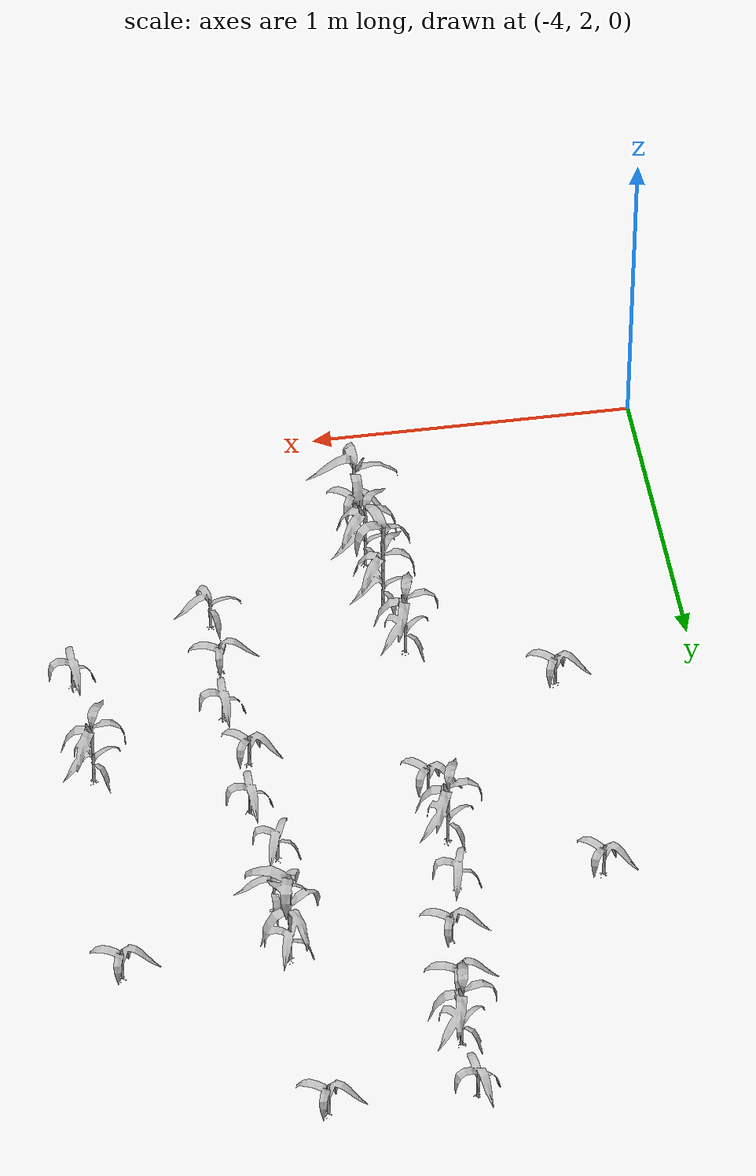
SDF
<sdf version="1.7">
 <world name="default">
  <model name="maize_-3.560724053893078_3.1950000000000003">
   <static>1</static>
   <link name="link">
    <inertial>
     <mass>0.2</mass>
     <inertia>
      <ixx>0.166667</ixx>
      <ixy>0</ixy>
      <ixz>0</ixz>
      <iyy>0.166667</iyy>
      <iyz>0</iyz>
      <izz>0.166667</izz>
     </inertia>
    </inertial>
    <collision name="collision">
     <geometry><mesh><uri>model://corn_3/meshes/corn.dae</uri><scale>0.25 0.25 0.25</scale></mesh></geometry>
     <surface>
      <friction><ode><mu>0</mu><mu2>0</mu2></ode></friction>
      <contact><ode><kp>0</kp><kd>0</kd><max_vel>0</max_vel><min_depth>0.002</min_depth></ode></contact>
     </surface>
    </collision>
    <visual name="visual">
     <geometry><mesh><uri>model://corn_3/meshes/corn.dae</uri><scale>0.25 0.25 0.25</scale></mesh></geometry>
    </visual>
    <velocity_decay><linear>0</linear><angular>0</angular></velocity_decay>
   </link>
   <pose>-3.56072 3.195 0.05 0 -0 2.61687</pose>
  </model>
  <model name="maize_-3.569120980531867_3.9750000000000005">
   <static>1</static>
   <link name="link">
    <inertial>
     <mass>0.2</mass>
     <inertia>
      <ixx>0.166667</ixx>
      <ixy>0</ixy>
      <ixz>0</ixz>
      <iyy>0.166667</iyy>
      <iyz>0</iyz>
      <izz>0.166667</izz>
     </inertia>
    </inertial>
    <collision name="collision">
     <geometry><mesh><uri>model://corn_3/meshes/corn.dae</uri><scale>0.25 0.25 0.25</scale></mesh></geometry>
     <surface>
      <friction><ode><mu>0</mu><mu2>0</mu2></ode></friction>
      <contact><ode><kp>0</kp><kd>0</kd><max_vel>0</max_vel><min_depth>0.002</min_depth></ode></contact>
     </surface>
    </collision>
    <visual name="visual">
     <geometry><mesh><uri>model://corn_3/meshes/corn.dae</uri><scale>0.25 0.25 0.25</scale></mesh></geometry>
    </visual>
    <velocity_decay><linear>0</linear><angular>0</angular></velocity_decay>
   </link>
   <pose>-3.56912 3.975 0.05 0 -0 2.43668</pose>
  </model>
  <model name="maize_-3.0683423191602865_2.415">
   <static>1</static>
   <link name="link">
    <inertial>
     <mass>0.2</mass>
     <inertia>
      <ixx>0.166667</ixx>
      <ixy>0</ixy>
      <ixz>0</ixz>
      <iyy>0.166667</iyy>
      <iyz>0</iyz>
      <izz>0.166667</izz>
     </inertia>
    </inertial>
    <collision name="collision">
     <geometry><mesh><uri>model://corn_4/meshes/corn.dae</uri><scale>0.25 0.25 0.25</scale></mesh></geometry>
     <surface>
      <friction><ode><mu>0</mu><mu2>0</mu2></ode></friction>
      <contact><ode><kp>0</kp><kd>0</kd><max_vel>0</max_vel><min_depth>0.002</min_depth></ode></contact>
     </surface>
    </collision>
    <visual name="visual">
     <geometry><mesh><uri>model://corn_4/meshes/corn.dae</uri><scale>0.25 0.25 0.25</scale></mesh></geometry>
    </visual>
    <velocity_decay><linear>0</linear><angular>0</angular></velocity_decay>
   </link>
   <pose>-3.06834 2.415 0.05 0 -0 2.5749</pose>
  </model>
  <model name="maize_-3.0740597269625063_2.6100000000000003">
   <static>1</static>
   <link name="link">
    <inertial>
     <mass>0.2</mass>
     <inertia>
      <ixx>0.166667</ixx>
      <ixy>0</ixy>
      <ixz>0</ixz>
      <iyy>0.166667</iyy>
      <iyz>0</iyz>
      <izz>0.166667</izz>
     </inertia>
    </inertial>
    <collision name="collision">
     <geometry><mesh><uri>model://corn_4/meshes/corn.dae</uri><scale>0.25 0.25 0.25</scale></mesh></geometry>
     <surface>
      <friction><ode><mu>0</mu><mu2>0</mu2></ode></friction>
      <contact><ode><kp>0</kp><kd>0</kd><max_vel>0</max_vel><min_depth>0.002</min_depth></ode></contact>
     </surface>
    </collision>
    <visual name="visual">
     <geometry><mesh><uri>model://corn_4/meshes/corn.dae</uri><scale>0.25 0.25 0.25</scale></mesh></geometry>
    </visual>
    <velocity_decay><linear>0</linear><angular>0</angular></velocity_decay>
   </link>
   <pose>-3.07406 2.61 0.05 0 -0 0.41093</pose>
  </model>
  <model name="maize_-3.099290868351918_2.8050000000000006">
   <static>1</static>
   <link name="link">
    <inertial>
     <mass>0.2</mass>
     <inertia>
      <ixx>0.166667</ixx>
      <ixy>0</ixy>
      <ixz>0</ixz>
      <iyy>0.166667</iyy>
      <iyz>0</iyz>
      <izz>0.166667</izz>
     </inertia>
    </inertial>
    <collision name="collision">
     <geometry><mesh><uri>model://corn_5/meshes/corn.dae</uri><scale>0.25 0.25 0.25</scale></mesh></geometry>
     <surface>
      <friction><ode><mu>0</mu><mu2>0</mu2></ode></friction>
      <contact><ode><kp>0</kp><kd>0</kd><max_vel>0</max_vel><min_depth>0.002</min_depth></ode></contact>
     </surface>
    </collision>
    <visual name="visual">
     <geometry><mesh><uri>model://corn_5/meshes/corn.dae</uri><scale>0.25 0.25 0.25</scale></mesh></geometry>
    </visual>
    <velocity_decay><linear>0</linear><angular>0</angular></velocity_decay>
   </link>
   <pose>-3.09929 2.805 0.05 0 -0 0.457814</pose>
  </model>
  <model name="maize_-3.137525908891163_3.000000000000001">
   <static>1</static>
   <link name="link">
    <inertial>
     <mass>0.2</mass>
     <inertia>
      <ixx>0.166667</ixx>
      <ixy>0</ixy>
      <ixz>0</ixz>
      <iyy>0.166667</iyy>
      <iyz>0</iyz>
      <izz>0.166667</izz>
     </inertia>
    </inertial>
    <collision name="collision">
     <geometry><mesh><uri>model://corn_4/meshes/corn.dae</uri><scale>0.25 0.25 0.25</scale></mesh></geometry>
     <surface>
      <friction><ode><mu>0</mu><mu2>0</mu2></ode></friction>
      <contact><ode><kp>0</kp><kd>0</kd><max_vel>0</max_vel><min_depth>0.002</min_depth></ode></contact>
     </surface>
    </collision>
    <visual name="visual">
     <geometry><mesh><uri>model://corn_4/meshes/corn.dae</uri><scale>0.25 0.25 0.25</scale></mesh></geometry>
    </visual>
    <velocity_decay><linear>0</linear><angular>0</angular></velocity_decay>
   </link>
   <pose>-3.13753 3 0.05 0 -0 0.781138</pose>
  </model>
  <model name="maize_-3.1146142105556134_3.585">
   <static>1</static>
   <link name="link">
    <inertial>
     <mass>0.2</mass>
     <inertia>
      <ixx>0.166667</ixx>
      <ixy>0</ixy>
      <ixz>0</ixz>
      <iyy>0.166667</iyy>
      <iyz>0</iyz>
      <izz>0.166667</izz>
     </inertia>
    </inertial>
    <collision name="collision">
     <geometry><mesh><uri>model://corn_3/meshes/corn.dae</uri><scale>0.25 0.25 0.25</scale></mesh></geometry>
     <surface>
      <friction><ode><mu>0</mu><mu2>0</mu2></ode></friction>
      <contact><ode><kp>0</kp><kd>0</kd><max_vel>0</max_vel><min_depth>0.002</min_depth></ode></contact>
     </surface>
    </collision>
    <visual name="visual">
     <geometry><mesh><uri>model://corn_3/meshes/corn.dae</uri><scale>0.25 0.25 0.25</scale></mesh></geometry>
    </visual>
    <velocity_decay><linear>0</linear><angular>0</angular></velocity_decay>
   </link>
   <pose>-3.11461 3.585 0.05 0 -0 2.49319</pose>
  </model>
  <model name="maize_-3.141904117909998_3.7800000000000002">
   <static>1</static>
   <link name="link">
    <inertial>
     <mass>0.2</mass>
     <inertia>
      <ixx>0.166667</ixx>
      <ixy>0</ixy>
      <ixz>0</ixz>
      <iyy>0.166667</iyy>
      <iyz>0</iyz>
      <izz>0.166667</izz>
     </inertia>
    </inertial>
    <collision name="collision">
     <geometry><mesh><uri>model://corn_4/meshes/corn.dae</uri><scale>0.25 0.25 0.25</scale></mesh></geometry>
     <surface>
      <friction><ode><mu>0</mu><mu2>0</mu2></ode></friction>
      <contact><ode><kp>0</kp><kd>0</kd><max_vel>0</max_vel><min_depth>0.002</min_depth></ode></contact>
     </surface>
    </collision>
    <visual name="visual">
     <geometry><mesh><uri>model://corn_4/meshes/corn.dae</uri><scale>0.25 0.25 0.25</scale></mesh></geometry>
    </visual>
    <velocity_decay><linear>0</linear><angular>0</angular></velocity_decay>
   </link>
   <pose>-3.1419 3.78 0.05 0 -0 0.685264</pose>
  </model>
  <model name="maize_-3.1405301411269795_3.9750000000000005">
   <static>1</static>
   <link name="link">
    <inertial>
     <mass>0.2</mass>
     <inertia>
      <ixx>0.166667</ixx>
      <ixy>0</ixy>
      <ixz>0</ixz>
      <iyy>0.166667</iyy>
      <iyz>0</iyz>
      <izz>0.166667</izz>
     </inertia>
    </inertial>
    <collision name="collision">
     <geometry><mesh><uri>model://corn_3/meshes/corn.dae</uri><scale>0.25 0.25 0.25</scale></mesh></geometry>
     <surface>
      <friction><ode><mu>0</mu><mu2>0</mu2></ode></friction>
      <contact><ode><kp>0</kp><kd>0</kd><max_vel>0</max_vel><min_depth>0.002</min_depth></ode></contact>
     </surface>
    </collision>
    <visual name="visual">
     <geometry><mesh><uri>model://corn_3/meshes/corn.dae</uri><scale>0.25 0.25 0.25</scale></mesh></geometry>
    </visual>
    <velocity_decay><linear>0</linear><angular>0</angular></velocity_decay>
   </link>
   <pose>-3.14053 3.975 0.05 0 -0 1.40196</pose>
  </model>
  <model name="maize_-3.090331058812858_4.170000000000001">
   <static>1</static>
   <link name="link">
    <inertial>
     <mass>0.2</mass>
     <inertia>
      <ixx>0.166667</ixx>
      <ixy>0</ixy>
      <ixz>0</ixz>
      <iyy>0.166667</iyy>
      <iyz>0</iyz>
      <izz>0.166667</izz>
     </inertia>
    </inertial>
    <collision name="collision">
     <geometry><mesh><uri>model://corn_3/meshes/corn.dae</uri><scale>0.25 0.25 0.25</scale></mesh></geometry>
     <surface>
      <friction><ode><mu>0</mu><mu2>0</mu2></ode></friction>
      <contact><ode><kp>0</kp><kd>0</kd><max_vel>0</max_vel><min_depth>0.002</min_depth></ode></contact>
     </surface>
    </collision>
    <visual name="visual">
     <geometry><mesh><uri>model://corn_3/meshes/corn.dae</uri><scale>0.25 0.25 0.25</scale></mesh></geometry>
    </visual>
    <velocity_decay><linear>0</linear><angular>0</angular></velocity_decay>
   </link>
   <pose>-3.09033 4.17 0.05 0 -0 2.73786</pose>
  </model>
  <model name="maize_-3.0785031119816617_4.365000000000001">
   <static>1</static>
   <link name="link">
    <inertial>
     <mass>0.2</mass>
     <inertia>
      <ixx>0.166667</ixx>
      <ixy>0</ixy>
      <ixz>0</ixz>
      <iyy>0.166667</iyy>
      <iyz>0</iyz>
      <izz>0.166667</izz>
     </inertia>
    </inertial>
    <collision name="collision">
     <geometry><mesh><uri>model://corn_3/meshes/corn.dae</uri><scale>0.25 0.25 0.25</scale></mesh></geometry>
     <surface>
      <friction><ode><mu>0</mu><mu2>0</mu2></ode></friction>
      <contact><ode><kp>0</kp><kd>0</kd><max_vel>0</max_vel><min_depth>0.002</min_depth></ode></contact>
     </surface>
    </collision>
    <visual name="visual">
     <geometry><mesh><uri>model://corn_3/meshes/corn.dae</uri><scale>0.25 0.25 0.25</scale></mesh></geometry>
    </visual>
    <velocity_decay><linear>0</linear><angular>0</angular></velocity_decay>
   </link>
   <pose>-3.0785 4.365 0.05 0 -0 2.90893</pose>
  </model>
  <model name="maize_-3.057669903206861_4.56">
   <static>1</static>
   <link name="link">
    <inertial>
     <mass>0.2</mass>
     <inertia>
      <ixx>0.166667</ixx>
      <ixy>0</ixy>
      <ixz>0</ixz>
      <iyy>0.166667</iyy>
      <iyz>0</iyz>
      <izz>0.166667</izz>
     </inertia>
    </inertial>
    <collision name="collision">
     <geometry><mesh><uri>model://corn_4/meshes/corn.dae</uri><scale>0.25 0.25 0.25</scale></mesh></geometry>
     <surface>
      <friction><ode><mu>0</mu><mu2>0</mu2></ode></friction>
      <contact><ode><kp>0</kp><kd>0</kd><max_vel>0</max_vel><min_depth>0.002</min_depth></ode></contact>
     </surface>
    </collision>
    <visual name="visual">
     <geometry><mesh><uri>model://corn_4/meshes/corn.dae</uri><scale>0.25 0.25 0.25</scale></mesh></geometry>
    </visual>
    <velocity_decay><linear>0</linear><angular>0</angular></velocity_decay>
   </link>
   <pose>-3.05767 4.56 0.05 0 -0 0.832059</pose>
  </model>
  <model name="maize_-3.0716811693157626_4.755">
   <static>1</static>
   <link name="link">
    <inertial>
     <mass>0.2</mass>
     <inertia>
      <ixx>0.166667</ixx>
      <ixy>0</ixy>
      <ixz>0</ixz>
      <iyy>0.166667</iyy>
      <iyz>0</iyz>
      <izz>0.166667</izz>
     </inertia>
    </inertial>
    <collision name="collision">
     <geometry><mesh><uri>model://corn_3/meshes/corn.dae</uri><scale>0.25 0.25 0.25</scale></mesh></geometry>
     <surface>
      <friction><ode><mu>0</mu><mu2>0</mu2></ode></friction>
      <contact><ode><kp>0</kp><kd>0</kd><max_vel>0</max_vel><min_depth>0.002</min_depth></ode></contact>
     </surface>
    </collision>
    <visual name="visual">
     <geometry><mesh><uri>model://corn_3/meshes/corn.dae</uri><scale>0.25 0.25 0.25</scale></mesh></geometry>
    </visual>
    <velocity_decay><linear>0</linear><angular>0</angular></velocity_decay>
   </link>
   <pose>-3.07168 4.755 0.05 0 -0 1.80982</pose>
  </model>
  <model name="maize_-2.572806261515649_2.8050000000000006">
   <static>1</static>
   <link name="link">
    <inertial>
     <mass>0.2</mass>
     <inertia>
      <ixx>0.166667</ixx>
      <ixy>0</ixy>
      <ixz>0</ixz>
      <iyy>0.166667</iyy>
      <iyz>0</iyz>
      <izz>0.166667</izz>
     </inertia>
    </inertial>
    <collision name="collision">
     <geometry><mesh><uri>model://corn_3/meshes/corn.dae</uri><scale>0.25 0.25 0.25</scale></mesh></geometry>
     <surface>
      <friction><ode><mu>0</mu><mu2>0</mu2></ode></friction>
      <contact><ode><kp>0</kp><kd>0</kd><max_vel>0</max_vel><min_depth>0.002</min_depth></ode></contact>
     </surface>
    </collision>
    <visual name="visual">
     <geometry><mesh><uri>model://corn_3/meshes/corn.dae</uri><scale>0.25 0.25 0.25</scale></mesh></geometry>
    </visual>
    <velocity_decay><linear>0</linear><angular>0</angular></velocity_decay>
   </link>
   <pose>-2.57281 2.805 0.05 0 -0 0.316052</pose>
  </model>
  <model name="maize_-2.5780314370186495_3.000000000000001">
   <static>1</static>
   <link name="link">
    <inertial>
     <mass>0.2</mass>
     <inertia>
      <ixx>0.166667</ixx>
      <ixy>0</ixy>
      <ixz>0</ixz>
      <iyy>0.166667</iyy>
      <iyz>0</iyz>
      <izz>0.166667</izz>
     </inertia>
    </inertial>
    <collision name="collision">
     <geometry><mesh><uri>model://corn_3/meshes/corn.dae</uri><scale>0.25 0.25 0.25</scale></mesh></geometry>
     <surface>
      <friction><ode><mu>0</mu><mu2>0</mu2></ode></friction>
      <contact><ode><kp>0</kp><kd>0</kd><max_vel>0</max_vel><min_depth>0.002</min_depth></ode></contact>
     </surface>
    </collision>
    <visual name="visual">
     <geometry><mesh><uri>model://corn_3/meshes/corn.dae</uri><scale>0.25 0.25 0.25</scale></mesh></geometry>
    </visual>
    <velocity_decay><linear>0</linear><angular>0</angular></velocity_decay>
   </link>
   <pose>-2.57803 3 0.05 0 -0 2.90211</pose>
  </model>
  <model name="maize_-2.559476035545161_3.1950000000000003">
   <static>1</static>
   <link name="link">
    <inertial>
     <mass>0.2</mass>
     <inertia>
      <ixx>0.166667</ixx>
      <ixy>0</ixy>
      <ixz>0</ixz>
      <iyy>0.166667</iyy>
      <iyz>0</iyz>
      <izz>0.166667</izz>
     </inertia>
    </inertial>
    <collision name="collision">
     <geometry><mesh><uri>model://corn_3/meshes/corn.dae</uri><scale>0.25 0.25 0.25</scale></mesh></geometry>
     <surface>
      <friction><ode><mu>0</mu><mu2>0</mu2></ode></friction>
      <contact><ode><kp>0</kp><kd>0</kd><max_vel>0</max_vel><min_depth>0.002</min_depth></ode></contact>
     </surface>
    </collision>
    <visual name="visual">
     <geometry><mesh><uri>model://corn_3/meshes/corn.dae</uri><scale>0.25 0.25 0.25</scale></mesh></geometry>
    </visual>
    <velocity_decay><linear>0</linear><angular>0</angular></velocity_decay>
   </link>
   <pose>-2.55948 3.195 0.05 0 -0 1.63773</pose>
  </model>
  <model name="maize_-2.611428567096863_3.3899999999999997">
   <static>1</static>
   <link name="link">
    <inertial>
     <mass>0.2</mass>
     <inertia>
      <ixx>0.166667</ixx>
      <ixy>0</ixy>
      <ixz>0</ixz>
      <iyy>0.166667</iyy>
      <iyz>0</iyz>
      <izz>0.166667</izz>
     </inertia>
    </inertial>
    <collision name="collision">
     <geometry><mesh><uri>model://corn_3/meshes/corn.dae</uri><scale>0.25 0.25 0.25</scale></mesh></geometry>
     <surface>
      <friction><ode><mu>0</mu><mu2>0</mu2></ode></friction>
      <contact><ode><kp>0</kp><kd>0</kd><max_vel>0</max_vel><min_depth>0.002</min_depth></ode></contact>
     </surface>
    </collision>
    <visual name="visual">
     <geometry><mesh><uri>model://corn_3/meshes/corn.dae</uri><scale>0.25 0.25 0.25</scale></mesh></geometry>
    </visual>
    <velocity_decay><linear>0</linear><angular>0</angular></velocity_decay>
   </link>
   <pose>-2.61143 3.39 0.05 0 -0 2.51985</pose>
  </model>
  <model name="maize_-2.5873946357377573_3.585">
   <static>1</static>
   <link name="link">
    <inertial>
     <mass>0.2</mass>
     <inertia>
      <ixx>0.166667</ixx>
      <ixy>0</ixy>
      <ixz>0</ixz>
      <iyy>0.166667</iyy>
      <iyz>0</iyz>
      <izz>0.166667</izz>
     </inertia>
    </inertial>
    <collision name="collision">
     <geometry><mesh><uri>model://corn_3/meshes/corn.dae</uri><scale>0.25 0.25 0.25</scale></mesh></geometry>
     <surface>
      <friction><ode><mu>0</mu><mu2>0</mu2></ode></friction>
      <contact><ode><kp>0</kp><kd>0</kd><max_vel>0</max_vel><min_depth>0.002</min_depth></ode></contact>
     </surface>
    </collision>
    <visual name="visual">
     <geometry><mesh><uri>model://corn_3/meshes/corn.dae</uri><scale>0.25 0.25 0.25</scale></mesh></geometry>
    </visual>
    <velocity_decay><linear>0</linear><angular>0</angular></velocity_decay>
   </link>
   <pose>-2.58739 3.585 0.05 0 -0 1.65931</pose>
  </model>
  <model name="maize_-2.641664089572463_3.7800000000000002">
   <static>1</static>
   <link name="link">
    <inertial>
     <mass>0.2</mass>
     <inertia>
      <ixx>0.166667</ixx>
      <ixy>0</ixy>
      <ixz>0</ixz>
      <iyy>0.166667</iyy>
      <iyz>0</iyz>
      <izz>0.166667</izz>
     </inertia>
    </inertial>
    <collision name="collision">
     <geometry><mesh><uri>model://corn_3/meshes/corn.dae</uri><scale>0.25 0.25 0.25</scale></mesh></geometry>
     <surface>
      <friction><ode><mu>0</mu><mu2>0</mu2></ode></friction>
      <contact><ode><kp>0</kp><kd>0</kd><max_vel>0</max_vel><min_depth>0.002</min_depth></ode></contact>
     </surface>
    </collision>
    <visual name="visual">
     <geometry><mesh><uri>model://corn_3/meshes/corn.dae</uri><scale>0.25 0.25 0.25</scale></mesh></geometry>
    </visual>
    <velocity_decay><linear>0</linear><angular>0</angular></velocity_decay>
   </link>
   <pose>-2.64166 3.78 0.05 0 -0 1.27391</pose>
  </model>
  <model name="maize_-2.605237069793662_3.9750000000000005">
   <static>1</static>
   <link name="link">
    <inertial>
     <mass>0.2</mass>
     <inertia>
      <ixx>0.166667</ixx>
      <ixy>0</ixy>
      <ixz>0</ixz>
      <iyy>0.166667</iyy>
      <iyz>0</iyz>
      <izz>0.166667</izz>
     </inertia>
    </inertial>
    <collision name="collision">
     <geometry><mesh><uri>model://corn_3/meshes/corn.dae</uri><scale>0.25 0.25 0.25</scale></mesh></geometry>
     <surface>
      <friction><ode><mu>0</mu><mu2>0</mu2></ode></friction>
      <contact><ode><kp>0</kp><kd>0</kd><max_vel>0</max_vel><min_depth>0.002</min_depth></ode></contact>
     </surface>
    </collision>
    <visual name="visual">
     <geometry><mesh><uri>model://corn_3/meshes/corn.dae</uri><scale>0.25 0.25 0.25</scale></mesh></geometry>
    </visual>
    <velocity_decay><linear>0</linear><angular>0</angular></velocity_decay>
   </link>
   <pose>-2.60524 3.975 0.05 0 -0 0.019614</pose>
  </model>
  <model name="maize_-2.6236372946487085_4.170000000000001">
   <static>1</static>
   <link name="link">
    <inertial>
     <mass>0.2</mass>
     <inertia>
      <ixx>0.166667</ixx>
      <ixy>0</ixy>
      <ixz>0</ixz>
      <iyy>0.166667</iyy>
      <iyz>0</iyz>
      <izz>0.166667</izz>
     </inertia>
    </inertial>
    <collision name="collision">
     <geometry><mesh><uri>model://corn_5/meshes/corn.dae</uri><scale>0.25 0.25 0.25</scale></mesh></geometry>
     <surface>
      <friction><ode><mu>0</mu><mu2>0</mu2></ode></friction>
      <contact><ode><kp>0</kp><kd>0</kd><max_vel>0</max_vel><min_depth>0.002</min_depth></ode></contact>
     </surface>
    </collision>
    <visual name="visual">
     <geometry><mesh><uri>model://corn_5/meshes/corn.dae</uri><scale>0.25 0.25 0.25</scale></mesh></geometry>
    </visual>
    <velocity_decay><linear>0</linear><angular>0</angular></velocity_decay>
   </link>
   <pose>-2.62364 4.17 0.05 0 -0 1.31684</pose>
  </model>
  <model name="maize_-2.6493219577947182_4.755">
   <static>1</static>
   <link name="link">
    <inertial>
     <mass>0.2</mass>
     <inertia>
      <ixx>0.166667</ixx>
      <ixy>0</ixy>
      <ixz>0</ixz>
      <iyy>0.166667</iyy>
      <iyz>0</iyz>
      <izz>0.166667</izz>
     </inertia>
    </inertial>
    <collision name="collision">
     <geometry><mesh><uri>model://corn_3/meshes/corn.dae</uri><scale>0.25 0.25 0.25</scale></mesh></geometry>
     <surface>
      <friction><ode><mu>0</mu><mu2>0</mu2></ode></friction>
      <contact><ode><kp>0</kp><kd>0</kd><max_vel>0</max_vel><min_depth>0.002</min_depth></ode></contact>
     </surface>
    </collision>
    <visual name="visual">
     <geometry><mesh><uri>model://corn_3/meshes/corn.dae</uri><scale>0.25 0.25 0.25</scale></mesh></geometry>
    </visual>
    <velocity_decay><linear>0</linear><angular>0</angular></velocity_decay>
   </link>
   <pose>-2.64932 4.755 0.05 0 -0 2.69362</pose>
  </model>
  <model name="maize_-2.1324008046690524_3.000000000000001">
   <static>1</static>
   <link name="link">
    <inertial>
     <mass>0.2</mass>
     <inertia>
      <ixx>0.166667</ixx>
      <ixy>0</ixy>
      <ixz>0</ixz>
      <iyy>0.166667</iyy>
      <iyz>0</iyz>
      <izz>0.166667</izz>
     </inertia>
    </inertial>
    <collision name="collision">
     <geometry><mesh><uri>model://corn_3/meshes/corn.dae</uri><scale>0.25 0.25 0.25</scale></mesh></geometry>
     <surface>
      <friction><ode><mu>0</mu><mu2>0</mu2></ode></friction>
      <contact><ode><kp>0</kp><kd>0</kd><max_vel>0</max_vel><min_depth>0.002</min_depth></ode></contact>
     </surface>
    </collision>
    <visual name="visual">
     <geometry><mesh><uri>model://corn_3/meshes/corn.dae</uri><scale>0.25 0.25 0.25</scale></mesh></geometry>
    </visual>
    <velocity_decay><linear>0</linear><angular>0</angular></velocity_decay>
   </link>
   <pose>-2.1324 3 0.05 0 -0 1.69636</pose>
  </model>
  <model name="maize_-2.1502179146149447_3.3899999999999997">
   <static>1</static>
   <link name="link">
    <inertial>
     <mass>0.2</mass>
     <inertia>
      <ixx>0.166667</ixx>
      <ixy>0</ixy>
      <ixz>0</ixz>
      <iyy>0.166667</iyy>
      <iyz>0</iyz>
      <izz>0.166667</izz>
     </inertia>
    </inertial>
    <collision name="collision">
     <geometry><mesh><uri>model://corn_4/meshes/corn.dae</uri><scale>0.25 0.25 0.25</scale></mesh></geometry>
     <surface>
      <friction><ode><mu>0</mu><mu2>0</mu2></ode></friction>
      <contact><ode><kp>0</kp><kd>0</kd><max_vel>0</max_vel><min_depth>0.002</min_depth></ode></contact>
     </surface>
    </collision>
    <visual name="visual">
     <geometry><mesh><uri>model://corn_4/meshes/corn.dae</uri><scale>0.25 0.25 0.25</scale></mesh></geometry>
    </visual>
    <velocity_decay><linear>0</linear><angular>0</angular></velocity_decay>
   </link>
   <pose>-2.15022 3.39 0.05 0 -0 0.642313</pose>
  </model>
  <model name="maize_-2.14072580926732_4.170000000000001">
   <static>1</static>
   <link name="link">
    <inertial>
     <mass>0.2</mass>
     <inertia>
      <ixx>0.166667</ixx>
      <ixy>0</ixy>
      <ixz>0</ixz>
      <iyy>0.166667</iyy>
      <iyz>0</iyz>
      <izz>0.166667</izz>
     </inertia>
    </inertial>
    <collision name="collision">
     <geometry><mesh><uri>model://corn_3/meshes/corn.dae</uri><scale>0.25 0.25 0.25</scale></mesh></geometry>
     <surface>
      <friction><ode><mu>0</mu><mu2>0</mu2></ode></friction>
      <contact><ode><kp>0</kp><kd>0</kd><max_vel>0</max_vel><min_depth>0.002</min_depth></ode></contact>
     </surface>
    </collision>
    <visual name="visual">
     <geometry><mesh><uri>model://corn_3/meshes/corn.dae</uri><scale>0.25 0.25 0.25</scale></mesh></geometry>
    </visual>
    <velocity_decay><linear>0</linear><angular>0</angular></velocity_decay>
   </link>
   <pose>-2.14073 4.17 0.05 0 -0 2.76129</pose>
  </model>
 </world>
</sdf>
